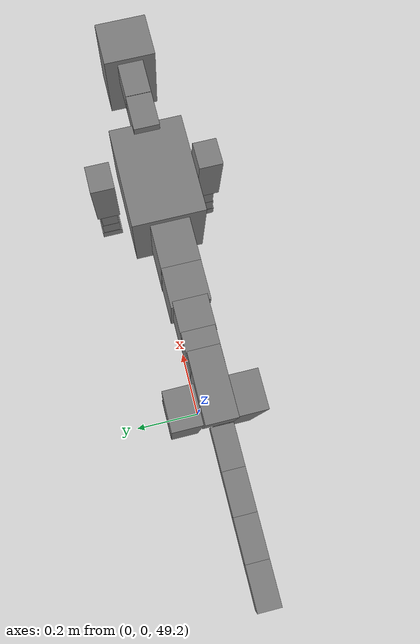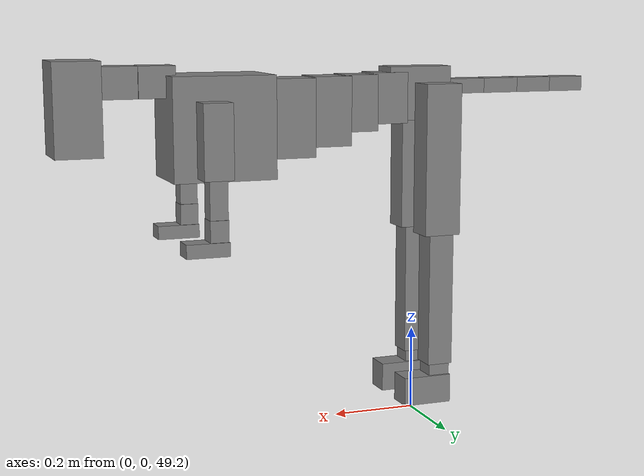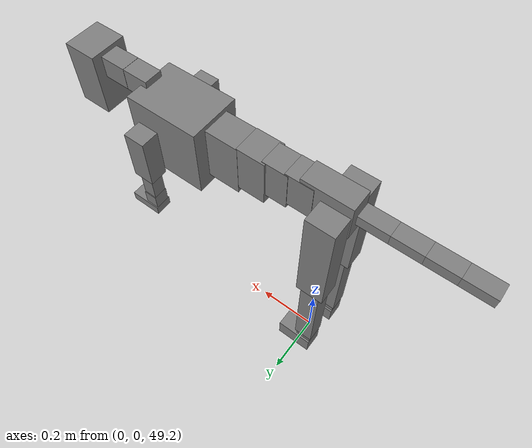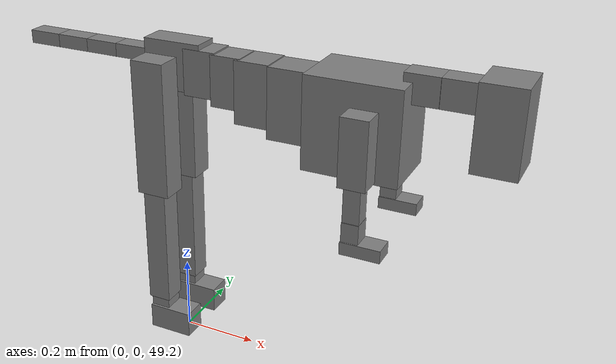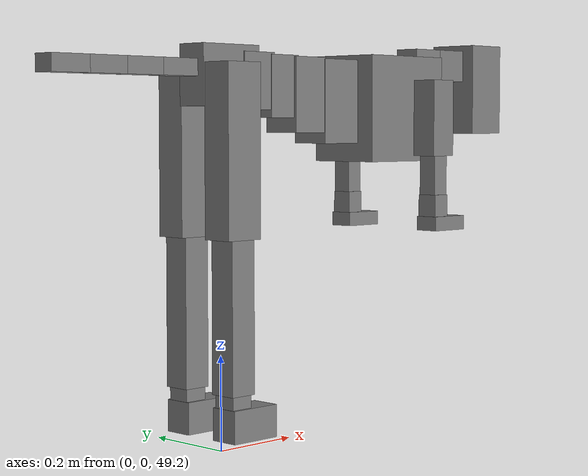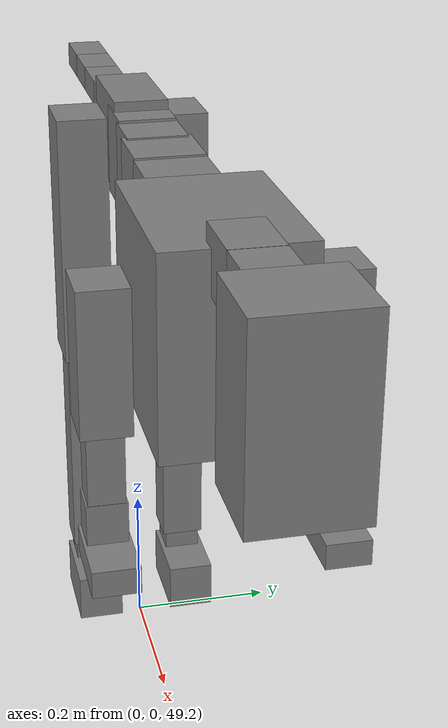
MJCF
<mujoco model="dog">

    <default>
        <joint armature="0.02" stiffness="1" damping="0.2" limited="true"/>
        <geom condim="3" friction="1 0.05 0.05" margin="0.01"/>
        <motor ctrllimited="true" ctrlrange="-1.0 1.0" forcelimited="true" gear="50"/>
    </default>

    <compiler inertiafromgeom="true" angle="radian"/>

    <option timestep="0.016" iterations="50" tolerance="1e-10" solver="Newton" jacobian="dense" cone="pyramidal"/>

    <size nconmax="20000" njmax="60000" nstack="5000000"/>
    <visual>
        <map force="0.1" zfar="30"/>
        <rgba haze="0.15 0.25 0.35 1"/>
        <quality shadowsize="2048"/>
        <global offwidth="800" offheight="800"/>
    </visual>

    <asset>
        <texture type="skybox" builtin="gradient" rgb1="0.3 0.5 0.7" rgb2="0 0 0" width="512" height="512"/>
        <texture name="texplane" type="2d" builtin="checker" rgb1=".2 .3 .4" rgb2=".1 0.15 0.2" width="512" height="512"
                 mark="cross" markrgb=".8 .8 .8"/>
        <texture name="texgeom" type="cube" builtin="flat" mark="cross" width="127" height="1278" rgb1="0.8 0.6 0.4"
                 rgb2="0.8 0.6 0.4" markrgb="1 1 1" random="0.01"/>

        <material name="matplane" reflectance="0.3" texture="texplane" texrepeat="1 1" texuniform="true"/>
        <material name="matgeom" texture="texgeom" texuniform="true" rgba="0.8 0.6 .4 1"/>
    </asset>

    <worldbody>
        <geom name="floor" pos="0 0 0" size="0 0 .25" type="plane" material="matplane" condim="3"/>

        <light directional="false" diffuse=".2 .2 .2" specular="0 0 0" pos="0 0 5" dir="0 0 -1" castshadow="false"/>
        <light mode="targetbodycom" target="torso" directional="false" diffuse=".8 .8 .8" specular="0.3 0.3 0.3"
               pos="0 0 4.0" dir="0 0 -1"/>

        <body name="root" pos="0 0 50">
            <freejoint name="root_1"/>
            <geom type="box" pos="0 0 -0.02" size="0.0774  0.0358  0.063" density="2030"/>

            <body name="spine1" pos="0.054 0 0">
                <joint name="spine1_y" axis="0 1 0" range="0 0.7" limited="true"/>
                <geom type="box" pos="0.02375 0 -0.03" size="0.04375  0.0375  0.05985" density="2030"/>

                <body name="spine2" pos="0.0612 0 0">
                    <joint name="spine2_y" axis="0 1 0" range="-0.15 0.15" limited="true"/>
                    <geom type="box" pos="0.03555  0  -0.04" size="0.04055  0.039  0.06615" density="2030"/>

                    <body name="spine3" pos="0.0730 0 0">
                        <joint name="spine3_y" axis="0 1 0" range="-0.15 0.15" limited="true"/>
                        <geom type="box" pos="0.03555  0  -0.057" size="0.04555  0.0445  0.081" density="2030"/>

                        <body name="spine4" pos="0.0780 0 0">
                            <joint name="spine4_y" axis="0 1 0" range="-0.15 0.15" limited="true"/>
                            <geom type="box" pos="0.05265  0  -0.07" size="0.05265  0.045  0.09135" density="2030"/>

                            <body name="torso" pos="0.1082 0 0">
                                <joint name="torso_y" axis="0 1 0" range="-0.15 0.15" limited="true"/>
                                <geom type="box" pos="0.11925  0  -0.085" size="0.11925  0.085  0.11745"
                                      density="2030"/>

                                <body name="neck1" pos="0.2160  0   0.0180">
                                    <joint name="neck1_y" axis="0 1 0" range="-1.2  -1" limited="true"/>
                                    <geom type="box" pos="0.0423  0  0" size="0.0423  0.03  0.036" density="2325"/>

                                    <body name="neck2" pos="0.0853  0  0">
                                        <joint name="neck2_y" axis="0 1 0" range="0.1  0" limited="true"/>
                                        <geom type="box" pos="0.0423  0  0" size="0.0423  0.03  0.036" density="2325"/>

                                        <body name="head" pos="0.0853  0  0">
                                            <joint name="head_y" axis="0 1 0" range="-0.3  -0.2" limited="true"/>
                                            <geom type="box" pos="0.0531  0  -0.055" size="0.0531  0.06  0.1044"
                                                  density="4030"/>

                                        </body>
                                    </body>
                                </body>

                                <body name="front_shoulder" pos="0.156  0   -0.0480">
                                    <joint name="front_shoulder_y" axis="0 1 0" range="-1 1.5" limited="true"/>
                                    <geom type="box" pos="0 0.13 -0.0578" size="0.0338  0.0289  0.0844" density="1158"/>
                                    <geom type="box" pos="0 -0.13 -0.0578" size="0.0338  0.0289  0.0844"
                                          density="1158"/>

                                    <body name="front_elbow" pos="0  0  -0.1156">
                                        <joint name="front_elbow_y" axis="0 1 0" range="-2 0" limited="true"/>
                                        <geom type="box" pos="0 0.13 -0.0634" size="0.0207  0.0212  0.0634"
                                              density="1081"/>
                                        <geom type="box" pos="0 -0.13 -0.0634" size="0.0207  0.0212  0.0634"
                                              density="1081"/>

                                        <body name="front_wrist" pos="0  0  -0.1267">
                                            <joint name="front_wrist_y" axis="0 1 0" range="-0.2 0" limited="true"/>
                                            <geom type="box" pos="0 0.13 -0.0254" size="0.0212  0.0235  0.0385"
                                                  density="1664"/>
                                            <geom type="box" pos="0 -0.13 -0.0254" size="0.0212  0.0235  0.0385"
                                                  density="1664"/>

                                            <body name="front_finger_end" pos="0  0  -0.0507">
                                                <joint name="front_finger_y" axis="0 1 0" range="-0.4 1"
                                                       limited="true"/>
                                                <geom type="box" pos="0.0270  0.13  -0.0008"
                                                      size="0.0496  0.0270  0.0158" density="1515"/>
                                                <geom type="box" pos="0.0270  -0.13  -0.0008"
                                                      size="0.0496  0.0270  0.0158" density="1515"/>

                                            </body>

                                        </body>
                                    </body>
                                </body>

                            </body>
                        </body>
                    </body>
                </body>
            </body>

            <body name="back_hip" pos="-0.03 0 -0.018">
                <joint name="back_hip_y" axis="0 1 0" range="-1.5 0.3" limited="true"/>
                <geom type="box" pos="0 0.07 -0.1559" size="0.0443  0.0348  0.1787" density="1154"/>
                <geom type="box" pos="0 -0.07 -0.1559" size="0.0443  0.0348  0.1787" density="1154"/>

                <body name="back_knee" pos="0  0  -0.3117">
                    <joint name="back_knee_y" axis="0 1 0" range="0 2.8" limited="true"/>
                    <geom type="box" pos="0 0.07 -0.1615" size="0.0305  0.0301  0.1771" density="1227"/>
                    <geom type="box" pos="0 -0.07 -0.1615" size="0.0305  0.0301  0.1771" density="1227"/>

                    <body name="back_ankle" pos="0  0  -0.3230">
                        <joint name="back_ankle_y" axis="0 1 0" range="-2.2 0" limited="true"/>
                        <geom type="box" pos="0 0.07 -0.0290" size="0.0257  0.0257  0.0402" density="1284"/>
                        <geom type="box" pos="0 -0.07 -0.0290" size="0.0257  0.0257  0.0402" density="1284"/>

                        <body name="back_toe_end" pos="0  0  -0.0580">
                            <joint name="back_toe_y" axis="0 1 0" range="-0.4 1" limited="true"/>
                            <geom type="box" pos="0.0322  0.07  -0.0190" size="0.0590  0.0322  0.0340" density="1515"/>
                            <geom type="box" pos="0.0322  -0.07  -0.0190" size="0.0590  0.0322  0.0340" density="1515"/>

                        </body>
                    </body>
                </body>
            </body>

            <body name="tail1" pos="-0.074 0 -0.006">
                <joint name="tail1_y" axis="0 1 0" range="-0.2 0.2" limited="true"/>
                <geom type="box" pos="-0.0536  0  0" size="0.045  0.025  0.0175" density="1587"/>

                <body name="tail2" pos="-0.09 0 0">
                    <joint name="tail2_y" axis="0 1 0" range="-0.2 0.2" limited="true"/>
                    <geom type="box" pos="-0.0536  0  0" size="0.045  0.025  0.0175" density="1587"/>

                    <body name="tail3" pos="-0.09 0 0">
                        <joint name="tail3_y" axis="0 1 0" range="-0.2 0.2" limited="true"/>
                        <geom type="box" pos="-0.0536  0  0" size="0.045  0.025  0.0175" density="1587"/>

                        <body name="tail4" pos="-0.09 0 0">
                            <joint name="tail4_y" axis="0 1 0" range="-0.2 0.2" limited="true"/>
                            <geom type="box" pos="-0.0536  0  0" size="0.045  0.025  0.0175" density="1587"/>

                        </body>
                    </body>
                </body>
            </body>
        </body>
    </worldbody>

    <actuator>
        <motor joint="spine1_y" forcerange="-150 150     "/>
        <motor joint="spine2_y" forcerange="-150 150     "/>
        <motor joint="spine3_y" forcerange="-150 150     "/>
        <motor joint="spine4_y" forcerange="-150 150     "/>
        <motor joint="torso_y" forcerange="-150 150     "/>
        <motor joint="neck1_y" forcerange="-100 100       "/>
        <motor joint="neck2_y" forcerange="-100 100       "/>
        <motor joint="head_y" forcerange="-150 150       "/>
        <motor joint="front_shoulder_y" forcerange="-147.67 144.75"/>
        <motor joint="front_elbow_y" forcerange="-114.16 139.80"/>
        <motor joint="front_wrist_y" forcerange="-66.94 121.11"/>
        <motor joint="front_finger_y" forcerange="-82.44 21.73"/>
        <motor joint="back_hip_y" forcerange="-290.87 372.90"/>
        <motor joint="back_knee_y" forcerange="-326.12 311.39"/>
        <motor joint="back_angle_y" forcerange="-74.37 237.06"/>
        <motor joint="back_toe_y" forcerange="-48.63 128.99"/>
        <motor joint="tail1_y" forcerange="-50 50     "/>
        <motor joint="tail2_y" forcerange="-50 50     "/>
        <motor joint="tail3_y" forcerange="-50 50     "/>
        <motor joint="tail4_y" forcerange="-50 50     "/>
    </actuator>
</mujoco>
